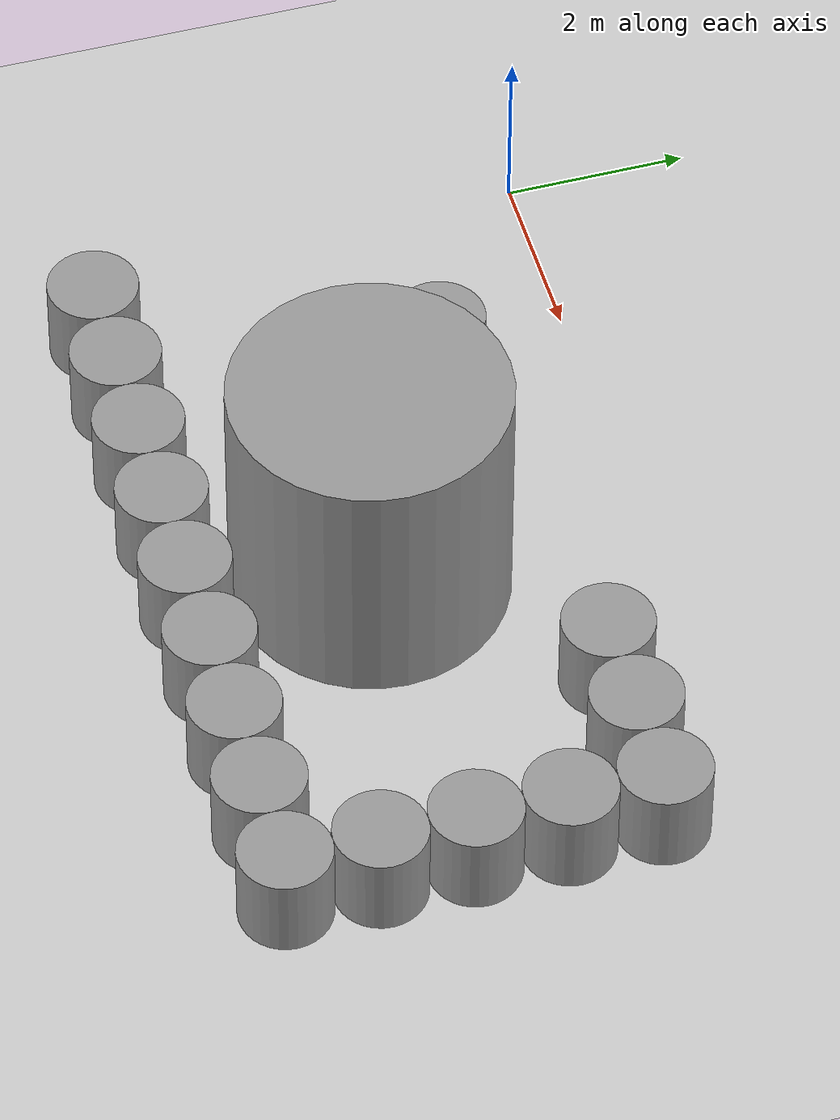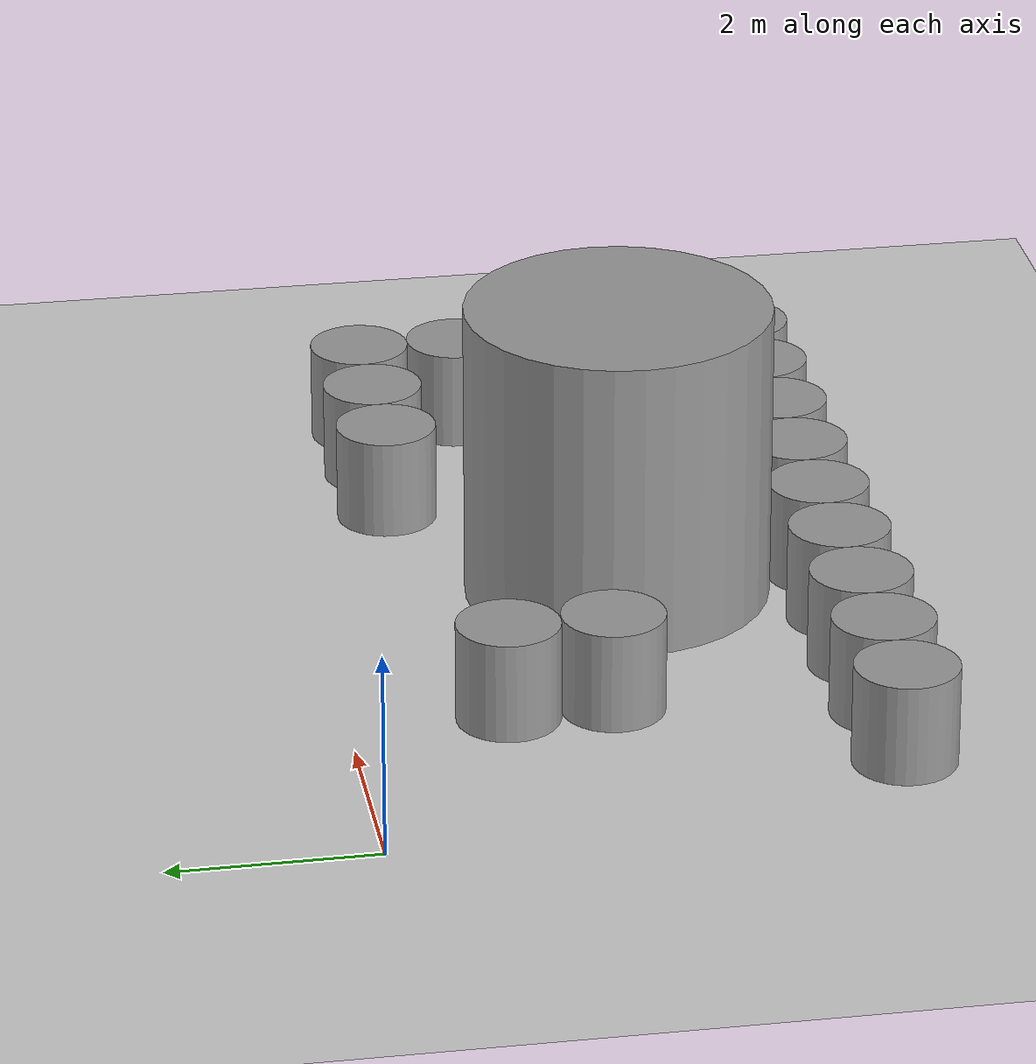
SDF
<sdf version="1.7">
 <world name="default">
  <model name="ground_plane">
   <static>1</static>
   <link name="link">
    <collision name="collision">
     <geometry><plane><normal>0 0 1</normal><size>100 100</size></plane></geometry>
     <surface>
      <contact><collide_bitmask>65535</collide_bitmask></contact>
      <friction><ode><mu>100</mu><mu2>50</mu2></ode></friction>
     </surface>
    </collision>
    <visual name="visual">
     <cast_shadows>0</cast_shadows>
     <geometry><plane><normal>0 0 1</normal><size>100 100</size></plane></geometry>
     <material>
      <script><uri>file://media/materials/scripts/gazebo.material</uri><name>Gazebo/Grey</name></script>
     </material>
    </visual>
   </link>
  </model>
  <model name="cylinder_1m_2_clone_14">
   <model name="cylinder_1m">
    <link name="link_0">
     <inertial>
      <mass>1</mass>
      <inertia>
       <ixx>0.166667</ixx>
       <ixy>0</ixy>
       <ixz>0</ixz>
       <iyy>0.166667</iyy>
       <iyz>0</iyz>
       <izz>0.166667</izz>
      </inertia>
     </inertial>
     <pose>0 0 -0 1.5708 -0 0</pose>
     <visual name="visual">
      <geometry>
       <mesh>
        <uri>/home/leesirius/workbench_ws/src/tb3_custom_worlds/custom_models/cylinder_1m.obj</uri>
        <scale>1 1 1</scale>
       </mesh>
      </geometry>
      <material>
       <lighting>1</lighting>
       <script><uri>file://media/materials/scripts/gazebo.material</uri><name>Gazebo/Grey</name></script>
       <shader type="pixel"/>
      </material>
     </visual>
     <collision name="collision">
      <geometry>
       <mesh>
        <uri>/home/leesirius/workbench_ws/src/tb3_custom_worlds/custom_models/cylinder_1m.obj</uri>
        <scale>1 1 1</scale>
       </mesh>
      </geometry>
      <surface>
       <friction>
        <ode><mu>1</mu><mu2>1</mu2><fdir1>0 0 0</fdir1><slip1>0</slip1><slip2>0</slip2></ode>
        <torsional>
         <coefficient>1</coefficient>
         <patch_radius>0</patch_radius>
         <surface_radius>0</surface_radius>
         <use_patch_radius>1</use_patch_radius>
         <ode><slip>0</slip></ode>
        </torsional>
       </friction>
       <bounce><restitution_coefficient>0</restitution_coefficient><threshold>1e+06</threshold></bounce>
       <contact>
        <collide_without_contact>0</collide_without_contact>
        <collide_without_contact_bitmask>1</collide_without_contact_bitmask>
        <collide_bitmask>1</collide_bitmask>
        <ode>
         <soft_cfm>0</soft_cfm>
         <soft_erp>0.2</soft_erp>
         <kp>1e+13</kp>
         <kd>1</kd>
         <max_vel>0.01</max_vel>
         <min_depth>0</min_depth>
        </ode>
        <bullet>
         <split_impulse>1</split_impulse>
         <split_impulse_penetration_threshold>-0.01</split_impulse_penetration_threshold>
         <soft_cfm>0</soft_cfm>
         <soft_erp>0.2</soft_erp>
         <kp>1e+13</kp>
         <kd>1</kd>
        </bullet>
       </contact>
      </surface>
     </collision>
    </link>
    <static>0</static>
    <pose>0 0 4e-06 0 -0 0</pose>
   </model>
   <static>1</static>
   <pose>1.00004 -5.00001 0.499995 -4e-06 -3e-06 0.00017</pose>
  </model>
  <model name="cylinder_1m_2_clone_15">
   <model name="cylinder_1m">
    <link name="link_0">
     <inertial>
      <mass>1</mass>
      <inertia>
       <ixx>0.166667</ixx>
       <ixy>0</ixy>
       <ixz>0</ixz>
       <iyy>0.166667</iyy>
       <iyz>0</iyz>
       <izz>0.166667</izz>
      </inertia>
     </inertial>
     <pose>0 0 -0 1.5708 -0 0</pose>
     <visual name="visual">
      <geometry>
       <mesh>
        <uri>/home/leesirius/workbench_ws/src/tb3_custom_worlds/custom_models/cylinder_1m.obj</uri>
        <scale>1 1 1</scale>
       </mesh>
      </geometry>
      <material>
       <lighting>1</lighting>
       <script><uri>file://media/materials/scripts/gazebo.material</uri><name>Gazebo/Grey</name></script>
       <shader type="pixel"/>
      </material>
     </visual>
     <collision name="collision">
      <geometry>
       <mesh>
        <uri>/home/leesirius/workbench_ws/src/tb3_custom_worlds/custom_models/cylinder_1m.obj</uri>
        <scale>1 1 1</scale>
       </mesh>
      </geometry>
      <surface>
       <friction>
        <ode><mu>1</mu><mu2>1</mu2><fdir1>0 0 0</fdir1><slip1>0</slip1><slip2>0</slip2></ode>
        <torsional>
         <coefficient>1</coefficient>
         <patch_radius>0</patch_radius>
         <surface_radius>0</surface_radius>
         <use_patch_radius>1</use_patch_radius>
         <ode><slip>0</slip></ode>
        </torsional>
       </friction>
       <bounce><restitution_coefficient>0</restitution_coefficient><threshold>1e+06</threshold></bounce>
       <contact>
        <collide_without_contact>0</collide_without_contact>
        <collide_without_contact_bitmask>1</collide_without_contact_bitmask>
        <collide_bitmask>1</collide_bitmask>
        <ode>
         <soft_cfm>0</soft_cfm>
         <soft_erp>0.2</soft_erp>
         <kp>1e+13</kp>
         <kd>1</kd>
         <max_vel>0.01</max_vel>
         <min_depth>0</min_depth>
        </ode>
        <bullet>
         <split_impulse>1</split_impulse>
         <split_impulse_penetration_threshold>-0.01</split_impulse_penetration_threshold>
         <soft_cfm>0</soft_cfm>
         <soft_erp>0.2</soft_erp>
         <kp>1e+13</kp>
         <kd>1</kd>
        </bullet>
       </contact>
      </surface>
     </collision>
    </link>
    <static>0</static>
    <pose>0 0 4e-06 0 -0 0</pose>
   </model>
   <static>1</static>
   <pose>2.00004 -5.00001 0.499995 -4e-06 -3e-06 0.00017</pose>
  </model>
  <model name="cylinder_1m_2_clone_16">
   <model name="cylinder_1m">
    <link name="link_0">
     <inertial>
      <mass>1</mass>
      <inertia>
       <ixx>0.166667</ixx>
       <ixy>0</ixy>
       <ixz>0</ixz>
       <iyy>0.166667</iyy>
       <iyz>0</iyz>
       <izz>0.166667</izz>
      </inertia>
     </inertial>
     <pose>0 0 -0 1.5708 -0 0</pose>
     <visual name="visual">
      <geometry>
       <mesh>
        <uri>/home/leesirius/workbench_ws/src/tb3_custom_worlds/custom_models/cylinder_1m.obj</uri>
        <scale>1 1 1</scale>
       </mesh>
      </geometry>
      <material>
       <lighting>1</lighting>
       <script><uri>file://media/materials/scripts/gazebo.material</uri><name>Gazebo/Grey</name></script>
       <shader type="pixel"/>
      </material>
     </visual>
     <collision name="collision">
      <geometry>
       <mesh>
        <uri>/home/leesirius/workbench_ws/src/tb3_custom_worlds/custom_models/cylinder_1m.obj</uri>
        <scale>1 1 1</scale>
       </mesh>
      </geometry>
      <surface>
       <friction>
        <ode><mu>1</mu><mu2>1</mu2><fdir1>0 0 0</fdir1><slip1>0</slip1><slip2>0</slip2></ode>
        <torsional>
         <coefficient>1</coefficient>
         <patch_radius>0</patch_radius>
         <surface_radius>0</surface_radius>
         <use_patch_radius>1</use_patch_radius>
         <ode><slip>0</slip></ode>
        </torsional>
       </friction>
       <bounce><restitution_coefficient>0</restitution_coefficient><threshold>1e+06</threshold></bounce>
       <contact>
        <collide_without_contact>0</collide_without_contact>
        <collide_without_contact_bitmask>1</collide_without_contact_bitmask>
        <collide_bitmask>1</collide_bitmask>
        <ode>
         <soft_cfm>0</soft_cfm>
         <soft_erp>0.2</soft_erp>
         <kp>1e+13</kp>
         <kd>1</kd>
         <max_vel>0.01</max_vel>
         <min_depth>0</min_depth>
        </ode>
        <bullet>
         <split_impulse>1</split_impulse>
         <split_impulse_penetration_threshold>-0.01</split_impulse_penetration_threshold>
         <soft_cfm>0</soft_cfm>
         <soft_erp>0.2</soft_erp>
         <kp>1e+13</kp>
         <kd>1</kd>
        </bullet>
       </contact>
      </surface>
     </collision>
    </link>
    <static>0</static>
    <pose>0 0 4e-06 0 -0 0</pose>
   </model>
   <static>1</static>
   <pose>2.99981 -5.00057 0.499997 -3e-06 2e-06 -0.000164</pose>
  </model>
  <model name="cylinder_1m_2_clone_17">
   <model name="cylinder_1m">
    <link name="link_0">
     <inertial>
      <mass>1</mass>
      <inertia>
       <ixx>0.166667</ixx>
       <ixy>0</ixy>
       <ixz>0</ixz>
       <iyy>0.166667</iyy>
       <iyz>0</iyz>
       <izz>0.166667</izz>
      </inertia>
     </inertial>
     <pose>0 0 -0 1.5708 -0 0</pose>
     <visual name="visual">
      <geometry>
       <mesh>
        <uri>/home/leesirius/workbench_ws/src/tb3_custom_worlds/custom_models/cylinder_1m.obj</uri>
        <scale>1 1 1</scale>
       </mesh>
      </geometry>
      <material>
       <lighting>1</lighting>
       <script><uri>file://media/materials/scripts/gazebo.material</uri><name>Gazebo/Grey</name></script>
       <shader type="pixel"/>
      </material>
     </visual>
     <collision name="collision">
      <geometry>
       <mesh>
        <uri>/home/leesirius/workbench_ws/src/tb3_custom_worlds/custom_models/cylinder_1m.obj</uri>
        <scale>1 1 1</scale>
       </mesh>
      </geometry>
      <surface>
       <friction>
        <ode><mu>1</mu><mu2>1</mu2><fdir1>0 0 0</fdir1><slip1>0</slip1><slip2>0</slip2></ode>
        <torsional>
         <coefficient>1</coefficient>
         <patch_radius>0</patch_radius>
         <surface_radius>0</surface_radius>
         <use_patch_radius>1</use_patch_radius>
         <ode><slip>0</slip></ode>
        </torsional>
       </friction>
       <bounce><restitution_coefficient>0</restitution_coefficient><threshold>1e+06</threshold></bounce>
       <contact>
        <collide_without_contact>0</collide_without_contact>
        <collide_without_contact_bitmask>1</collide_without_contact_bitmask>
        <collide_bitmask>1</collide_bitmask>
        <ode>
         <soft_cfm>0</soft_cfm>
         <soft_erp>0.2</soft_erp>
         <kp>1e+13</kp>
         <kd>1</kd>
         <max_vel>0.01</max_vel>
         <min_depth>0</min_depth>
        </ode>
        <bullet>
         <split_impulse>1</split_impulse>
         <split_impulse_penetration_threshold>-0.01</split_impulse_penetration_threshold>
         <soft_cfm>0</soft_cfm>
         <soft_erp>0.2</soft_erp>
         <kp>1e+13</kp>
         <kd>1</kd>
        </bullet>
       </contact>
      </surface>
     </collision>
    </link>
    <static>0</static>
    <pose>0 0 4e-06 0 -0 0</pose>
   </model>
   <static>1</static>
   <pose>3.99994 -5.00301 0.499974 1.9e-05 -3e-06 0.000667</pose>
  </model>
  <model name="cylinder_1m_2_clone_18">
   <model name="cylinder_1m">
    <link name="link_0">
     <inertial>
      <mass>1</mass>
      <inertia>
       <ixx>0.166667</ixx>
       <ixy>0</ixy>
       <ixz>0</ixz>
       <iyy>0.166667</iyy>
       <iyz>0</iyz>
       <izz>0.166667</izz>
      </inertia>
     </inertial>
     <pose>0 0 -0 1.5708 -0 0</pose>
     <visual name="visual">
      <geometry>
       <mesh>
        <uri>/home/leesirius/workbench_ws/src/tb3_custom_worlds/custom_models/cylinder_1m.obj</uri>
        <scale>1 1 1</scale>
       </mesh>
      </geometry>
      <material>
       <lighting>1</lighting>
       <script><uri>file://media/materials/scripts/gazebo.material</uri><name>Gazebo/Grey</name></script>
       <shader type="pixel"/>
      </material>
     </visual>
     <collision name="collision">
      <geometry>
       <mesh>
        <uri>/home/leesirius/workbench_ws/src/tb3_custom_worlds/custom_models/cylinder_1m.obj</uri>
        <scale>1 1 1</scale>
       </mesh>
      </geometry>
      <surface>
       <friction>
        <ode><mu>1</mu><mu2>1</mu2><fdir1>0 0 0</fdir1><slip1>0</slip1><slip2>0</slip2></ode>
        <torsional>
         <coefficient>1</coefficient>
         <patch_radius>0</patch_radius>
         <surface_radius>0</surface_radius>
         <use_patch_radius>1</use_patch_radius>
         <ode><slip>0</slip></ode>
        </torsional>
       </friction>
       <bounce><restitution_coefficient>0</restitution_coefficient><threshold>1e+06</threshold></bounce>
       <contact>
        <collide_without_contact>0</collide_without_contact>
        <collide_without_contact_bitmask>1</collide_without_contact_bitmask>
        <collide_bitmask>1</collide_bitmask>
        <ode>
         <soft_cfm>0</soft_cfm>
         <soft_erp>0.2</soft_erp>
         <kp>1e+13</kp>
         <kd>1</kd>
         <max_vel>0.01</max_vel>
         <min_depth>0</min_depth>
        </ode>
        <bullet>
         <split_impulse>1</split_impulse>
         <split_impulse_penetration_threshold>-0.01</split_impulse_penetration_threshold>
         <soft_cfm>0</soft_cfm>
         <soft_erp>0.2</soft_erp>
         <kp>1e+13</kp>
         <kd>1</kd>
        </bullet>
       </contact>
      </surface>
     </collision>
    </link>
    <static>0</static>
    <pose>0 0 4e-06 0 -0 0</pose>
   </model>
   <static>1</static>
   <pose>4.99273 -5.00326 0.499996 -3e-06 -0 0.023332</pose>
  </model>
  <model name="cylinder_1m_2_clone_42">
   <model name="cylinder_1m">
    <link name="link_0">
     <inertial>
      <mass>1</mass>
      <inertia>
       <ixx>0.166667</ixx>
       <ixy>0</ixy>
       <ixz>0</ixz>
       <iyy>0.166667</iyy>
       <iyz>0</iyz>
       <izz>0.166667</izz>
      </inertia>
     </inertial>
     <pose>0 0 -0 1.5708 -0 0</pose>
     <visual name="visual">
      <geometry>
       <mesh>
        <uri>/home/leesirius/workbench_ws/src/tb3_custom_worlds/custom_models/cylinder_1m.obj</uri>
        <scale>1 1 1</scale>
       </mesh>
      </geometry>
      <material>
       <lighting>1</lighting>
       <script><uri>file://media/materials/scripts/gazebo.material</uri><name>Gazebo/Grey</name></script>
       <shader type="pixel"/>
      </material>
     </visual>
     <collision name="collision">
      <geometry>
       <mesh>
        <uri>/home/leesirius/workbench_ws/src/tb3_custom_worlds/custom_models/cylinder_1m.obj</uri>
        <scale>1 1 1</scale>
       </mesh>
      </geometry>
      <surface>
       <friction>
        <ode><mu>1</mu><mu2>1</mu2><fdir1>0 0 0</fdir1><slip1>0</slip1><slip2>0</slip2></ode>
        <torsional>
         <coefficient>1</coefficient>
         <patch_radius>0</patch_radius>
         <surface_radius>0</surface_radius>
         <use_patch_radius>1</use_patch_radius>
         <ode><slip>0</slip></ode>
        </torsional>
       </friction>
       <bounce><restitution_coefficient>0</restitution_coefficient><threshold>1e+06</threshold></bounce>
       <contact>
        <collide_without_contact>0</collide_without_contact>
        <collide_without_contact_bitmask>1</collide_without_contact_bitmask>
        <collide_bitmask>1</collide_bitmask>
        <ode>
         <soft_cfm>0</soft_cfm>
         <soft_erp>0.2</soft_erp>
         <kp>1e+13</kp>
         <kd>1</kd>
         <max_vel>0.01</max_vel>
         <min_depth>0</min_depth>
        </ode>
        <bullet>
         <split_impulse>1</split_impulse>
         <split_impulse_penetration_threshold>-0.01</split_impulse_penetration_threshold>
         <soft_cfm>0</soft_cfm>
         <soft_erp>0.2</soft_erp>
         <kp>1e+13</kp>
         <kd>1</kd>
        </bullet>
       </contact>
      </surface>
     </collision>
    </link>
    <static>0</static>
    <pose>0 0 4e-06 0 -0 0</pose>
   </model>
   <static>1</static>
   <pose>8.00003 -5.00002 0.499993 -1e-05 3e-06 0.00017</pose>
  </model>
  <model name="cylinder_1m_2_clone_43">
   <model name="cylinder_1m">
    <link name="link_0">
     <inertial>
      <mass>1</mass>
      <inertia>
       <ixx>0.166667</ixx>
       <ixy>0</ixy>
       <ixz>0</ixz>
       <iyy>0.166667</iyy>
       <iyz>0</iyz>
       <izz>0.166667</izz>
      </inertia>
     </inertial>
     <pose>0 0 -0 1.5708 -0 0</pose>
     <visual name="visual">
      <geometry>
       <mesh>
        <uri>/home/leesirius/workbench_ws/src/tb3_custom_worlds/custom_models/cylinder_1m.obj</uri>
        <scale>1 1 1</scale>
       </mesh>
      </geometry>
      <material>
       <lighting>1</lighting>
       <script><uri>file://media/materials/scripts/gazebo.material</uri><name>Gazebo/Grey</name></script>
       <shader type="pixel"/>
      </material>
     </visual>
     <collision name="collision">
      <geometry>
       <mesh>
        <uri>/home/leesirius/workbench_ws/src/tb3_custom_worlds/custom_models/cylinder_1m.obj</uri>
        <scale>1 1 1</scale>
       </mesh>
      </geometry>
      <surface>
       <friction>
        <ode><mu>1</mu><mu2>1</mu2><fdir1>0 0 0</fdir1><slip1>0</slip1><slip2>0</slip2></ode>
        <torsional>
         <coefficient>1</coefficient>
         <patch_radius>0</patch_radius>
         <surface_radius>0</surface_radius>
         <use_patch_radius>1</use_patch_radius>
         <ode><slip>0</slip></ode>
        </torsional>
       </friction>
       <bounce><restitution_coefficient>0</restitution_coefficient><threshold>1e+06</threshold></bounce>
       <contact>
        <collide_without_contact>0</collide_without_contact>
        <collide_without_contact_bitmask>1</collide_without_contact_bitmask>
        <collide_bitmask>1</collide_bitmask>
        <ode>
         <soft_cfm>0</soft_cfm>
         <soft_erp>0.2</soft_erp>
         <kp>1e+13</kp>
         <kd>1</kd>
         <max_vel>0.01</max_vel>
         <min_depth>0</min_depth>
        </ode>
        <bullet>
         <split_impulse>1</split_impulse>
         <split_impulse_penetration_threshold>-0.01</split_impulse_penetration_threshold>
         <soft_cfm>0</soft_cfm>
         <soft_erp>0.2</soft_erp>
         <kp>1e+13</kp>
         <kd>1</kd>
        </bullet>
       </contact>
      </surface>
     </collision>
    </link>
    <static>0</static>
    <pose>0 0 4e-06 0 -0 0</pose>
   </model>
   <static>1</static>
   <pose>7.00003 -5.00002 0.499993 -1e-05 3e-06 0.00017</pose>
  </model>
  <model name="cylinder_1m_2_clone_44">
   <model name="cylinder_1m">
    <link name="link_0">
     <inertial>
      <mass>1</mass>
      <inertia>
       <ixx>0.166667</ixx>
       <ixy>0</ixy>
       <ixz>0</ixz>
       <iyy>0.166667</iyy>
       <iyz>0</iyz>
       <izz>0.166667</izz>
      </inertia>
     </inertial>
     <pose>0 0 -0 1.5708 -0 0</pose>
     <visual name="visual">
      <geometry>
       <mesh>
        <uri>/home/leesirius/workbench_ws/src/tb3_custom_worlds/custom_models/cylinder_1m.obj</uri>
        <scale>1 1 1</scale>
       </mesh>
      </geometry>
      <material>
       <lighting>1</lighting>
       <script><uri>file://media/materials/scripts/gazebo.material</uri><name>Gazebo/Grey</name></script>
       <shader type="pixel"/>
      </material>
     </visual>
     <collision name="collision">
      <geometry>
       <mesh>
        <uri>/home/leesirius/workbench_ws/src/tb3_custom_worlds/custom_models/cylinder_1m.obj</uri>
        <scale>1 1 1</scale>
       </mesh>
      </geometry>
      <surface>
       <friction>
        <ode><mu>1</mu><mu2>1</mu2><fdir1>0 0 0</fdir1><slip1>0</slip1><slip2>0</slip2></ode>
        <torsional>
         <coefficient>1</coefficient>
         <patch_radius>0</patch_radius>
         <surface_radius>0</surface_radius>
         <use_patch_radius>1</use_patch_radius>
         <ode><slip>0</slip></ode>
        </torsional>
       </friction>
       <bounce><restitution_coefficient>0</restitution_coefficient><threshold>1e+06</threshold></bounce>
       <contact>
        <collide_without_contact>0</collide_without_contact>
        <collide_without_contact_bitmask>1</collide_without_contact_bitmask>
        <collide_bitmask>1</collide_bitmask>
        <ode>
         <soft_cfm>0</soft_cfm>
         <soft_erp>0.2</soft_erp>
         <kp>1e+13</kp>
         <kd>1</kd>
         <max_vel>0.01</max_vel>
         <min_depth>0</min_depth>
        </ode>
        <bullet>
         <split_impulse>1</split_impulse>
         <split_impulse_penetration_threshold>-0.01</split_impulse_penetration_threshold>
         <soft_cfm>0</soft_cfm>
         <soft_erp>0.2</soft_erp>
         <kp>1e+13</kp>
         <kd>1</kd>
        </bullet>
       </contact>
      </surface>
     </collision>
    </link>
    <static>0</static>
    <pose>0 0 4e-06 0 -0 0</pose>
   </model>
   <static>1</static>
   <pose>6.00003 -5.00002 0.499993 -1e-05 3e-06 0.00017</pose>
  </model>
  <model name="cylinder_3m_0">
   <model name="cylinder_3m">
    <link name="link_2">
     <inertial>
      <mass>1</mass>
      <inertia>
       <ixx>0.166667</ixx>
       <ixy>0</ixy>
       <ixz>0</ixz>
       <iyy>0.166667</iyy>
       <iyz>0</iyz>
       <izz>0.166667</izz>
      </inertia>
     </inertial>
     <pose>0 0 -4e-06 1.5708 -0 3.14159</pose>
     <visual name="visual">
      <geometry>
       <mesh>
        <uri>/home/leesirius/workbench_ws/src/tb3_custom_worlds/custom_models/cylinder_3m.obj</uri>
        <scale>1 1 1</scale>
       </mesh>
      </geometry>
      <material>
       <lighting>1</lighting>
       <script><uri>file://media/materials/scripts/gazebo.material</uri><name>Gazebo/Grey</name></script>
       <shader type="pixel"/>
      </material>
     </visual>
     <collision name="collision">
      <geometry>
       <mesh>
        <uri>/home/leesirius/workbench_ws/src/tb3_custom_worlds/custom_models/cylinder_3m.obj</uri>
        <scale>1 1 1</scale>
       </mesh>
      </geometry>
      <surface>
       <friction>
        <ode><mu>1</mu><mu2>1</mu2><fdir1>0 0 0</fdir1><slip1>0</slip1><slip2>0</slip2></ode>
        <torsional>
         <coefficient>1</coefficient>
         <patch_radius>0</patch_radius>
         <surface_radius>0</surface_radius>
         <use_patch_radius>1</use_patch_radius>
         <ode><slip>0</slip></ode>
        </torsional>
       </friction>
       <bounce><restitution_coefficient>0</restitution_coefficient><threshold>1e+06</threshold></bounce>
       <contact>
        <collide_without_contact>0</collide_without_contact>
        <collide_without_contact_bitmask>1</collide_without_contact_bitmask>
        <collide_bitmask>1</collide_bitmask>
        <ode>
         <soft_cfm>0</soft_cfm>
         <soft_erp>0.2</soft_erp>
         <kp>1e+13</kp>
         <kd>1</kd>
         <max_vel>0.01</max_vel>
         <min_depth>0</min_depth>
        </ode>
        <bullet>
         <split_impulse>1</split_impulse>
         <split_impulse_penetration_threshold>-0.01</split_impulse_penetration_threshold>
         <soft_cfm>0</soft_cfm>
         <soft_erp>0.2</soft_erp>
         <kp>1e+13</kp>
         <kd>1</kd>
        </bullet>
       </contact>
      </surface>
     </collision>
    </link>
    <static>0</static>
    <pose>0 0 0.181896 0 -0 0</pose>
   </model>
   <static>1</static>
   <pose>5 -3.00003 1.31811 6e-06 -0 0.000143</pose>
  </model>
  <model name="cylinder_1m_2_clone_46_clone_10">
   <model name="cylinder_1m">
    <link name="link_0">
     <inertial>
      <mass>1</mass>
      <inertia>
       <ixx>0.166667</ixx>
       <ixy>0</ixy>
       <ixz>0</ixz>
       <iyy>0.166667</iyy>
       <iyz>0</iyz>
       <izz>0.166667</izz>
      </inertia>
     </inertial>
     <pose>0 0 -0 1.5708 -0 0</pose>
     <visual name="visual">
      <geometry>
       <mesh>
        <uri>/home/leesirius/workbench_ws/src/tb3_custom_worlds/custom_models/cylinder_1m.obj</uri>
        <scale>1 1 1</scale>
       </mesh>
      </geometry>
      <material>
       <lighting>1</lighting>
       <script><uri>file://media/materials/scripts/gazebo.material</uri><name>Gazebo/Grey</name></script>
       <shader type="pixel"/>
      </material>
     </visual>
     <collision name="collision">
      <geometry>
       <mesh>
        <uri>/home/leesirius/workbench_ws/src/tb3_custom_worlds/custom_models/cylinder_1m.obj</uri>
        <scale>1 1 1</scale>
       </mesh>
      </geometry>
      <surface>
       <friction>
        <ode><mu>1</mu><mu2>1</mu2><fdir1>0 0 0</fdir1><slip1>0</slip1><slip2>0</slip2></ode>
        <torsional>
         <coefficient>1</coefficient>
         <patch_radius>0</patch_radius>
         <surface_radius>0</surface_radius>
         <use_patch_radius>1</use_patch_radius>
         <ode><slip>0</slip></ode>
        </torsional>
       </friction>
       <bounce><restitution_coefficient>0</restitution_coefficient><threshold>1e+06</threshold></bounce>
       <contact>
        <collide_without_contact>0</collide_without_contact>
        <collide_without_contact_bitmask>1</collide_without_contact_bitmask>
        <collide_bitmask>1</collide_bitmask>
        <ode>
         <soft_cfm>0</soft_cfm>
         <soft_erp>0.2</soft_erp>
         <kp>1e+13</kp>
         <kd>1</kd>
         <max_vel>0.01</max_vel>
         <min_depth>0</min_depth>
        </ode>
        <bullet>
         <split_impulse>1</split_impulse>
         <split_impulse_penetration_threshold>-0.01</split_impulse_penetration_threshold>
         <soft_cfm>0</soft_cfm>
         <soft_erp>0.2</soft_erp>
         <kp>1e+13</kp>
         <kd>1</kd>
        </bullet>
       </contact>
      </surface>
     </collision>
    </link>
    <static>0</static>
    <pose>0 0 4e-06 0 -0 0</pose>
   </model>
   <static>1</static>
   <pose>7.00052 -1.00008 0.500017 -1.1e-05 4.5e-05 0.000276</pose>
  </model>
  <model name="cylinder_1m_2_clone_46_clone_11">
   <model name="cylinder_1m">
    <link name="link_0">
     <inertial>
      <mass>1</mass>
      <inertia>
       <ixx>0.166667</ixx>
       <ixy>0</ixy>
       <ixz>0</ixz>
       <iyy>0.166667</iyy>
       <iyz>0</iyz>
       <izz>0.166667</izz>
      </inertia>
     </inertial>
     <pose>0 0 -0 1.5708 -0 0</pose>
     <visual name="visual">
      <geometry>
       <mesh>
        <uri>/home/leesirius/workbench_ws/src/tb3_custom_worlds/custom_models/cylinder_1m.obj</uri>
        <scale>1 1 1</scale>
       </mesh>
      </geometry>
      <material>
       <lighting>1</lighting>
       <script><uri>file://media/materials/scripts/gazebo.material</uri><name>Gazebo/Grey</name></script>
       <shader type="pixel"/>
      </material>
     </visual>
     <collision name="collision">
      <geometry>
       <mesh>
        <uri>/home/leesirius/workbench_ws/src/tb3_custom_worlds/custom_models/cylinder_1m.obj</uri>
        <scale>1 1 1</scale>
       </mesh>
      </geometry>
      <surface>
       <friction>
        <ode><mu>1</mu><mu2>1</mu2><fdir1>0 0 0</fdir1><slip1>0</slip1><slip2>0</slip2></ode>
        <torsional>
         <coefficient>1</coefficient>
         <patch_radius>0</patch_radius>
         <surface_radius>0</surface_radius>
         <use_patch_radius>1</use_patch_radius>
         <ode><slip>0</slip></ode>
        </torsional>
       </friction>
       <bounce><restitution_coefficient>0</restitution_coefficient><threshold>1e+06</threshold></bounce>
       <contact>
        <collide_without_contact>0</collide_without_contact>
        <collide_without_contact_bitmask>1</collide_without_contact_bitmask>
        <collide_bitmask>1</collide_bitmask>
        <ode>
         <soft_cfm>0</soft_cfm>
         <soft_erp>0.2</soft_erp>
         <kp>1e+13</kp>
         <kd>1</kd>
         <max_vel>0.01</max_vel>
         <min_depth>0</min_depth>
        </ode>
        <bullet>
         <split_impulse>1</split_impulse>
         <split_impulse_penetration_threshold>-0.01</split_impulse_penetration_threshold>
         <soft_cfm>0</soft_cfm>
         <soft_erp>0.2</soft_erp>
         <kp>1e+13</kp>
         <kd>1</kd>
        </bullet>
       </contact>
      </surface>
     </collision>
    </link>
    <static>0</static>
    <pose>0 0 4e-06 0 -0 0</pose>
   </model>
   <static>1</static>
   <pose>8.00001 -1.00001 0.499993 -5e-06 -6e-06 0.0002</pose>
  </model>
  <model name="cylinder_1m_2_clone_46_clone_12">
   <model name="cylinder_1m">
    <link name="link_0">
     <inertial>
      <mass>1</mass>
      <inertia>
       <ixx>0.166667</ixx>
       <ixy>0</ixy>
       <ixz>0</ixz>
       <iyy>0.166667</iyy>
       <iyz>0</iyz>
       <izz>0.166667</izz>
      </inertia>
     </inertial>
     <pose>0 0 -0 1.5708 -0 0</pose>
     <visual name="visual">
      <geometry>
       <mesh>
        <uri>/home/leesirius/workbench_ws/src/tb3_custom_worlds/custom_models/cylinder_1m.obj</uri>
        <scale>1 1 1</scale>
       </mesh>
      </geometry>
      <material>
       <lighting>1</lighting>
       <script><uri>file://media/materials/scripts/gazebo.material</uri><name>Gazebo/Grey</name></script>
       <shader type="pixel"/>
      </material>
     </visual>
     <collision name="collision">
      <geometry>
       <mesh>
        <uri>/home/leesirius/workbench_ws/src/tb3_custom_worlds/custom_models/cylinder_1m.obj</uri>
        <scale>1 1 1</scale>
       </mesh>
      </geometry>
      <surface>
       <friction>
        <ode><mu>1</mu><mu2>1</mu2><fdir1>0 0 0</fdir1><slip1>0</slip1><slip2>0</slip2></ode>
        <torsional>
         <coefficient>1</coefficient>
         <patch_radius>0</patch_radius>
         <surface_radius>0</surface_radius>
         <use_patch_radius>1</use_patch_radius>
         <ode><slip>0</slip></ode>
        </torsional>
       </friction>
       <bounce><restitution_coefficient>0</restitution_coefficient><threshold>1e+06</threshold></bounce>
       <contact>
        <collide_without_contact>0</collide_without_contact>
        <collide_without_contact_bitmask>1</collide_without_contact_bitmask>
        <collide_bitmask>1</collide_bitmask>
        <ode>
         <soft_cfm>0</soft_cfm>
         <soft_erp>0.2</soft_erp>
         <kp>1e+13</kp>
         <kd>1</kd>
         <max_vel>0.01</max_vel>
         <min_depth>0</min_depth>
        </ode>
        <bullet>
         <split_impulse>1</split_impulse>
         <split_impulse_penetration_threshold>-0.01</split_impulse_penetration_threshold>
         <soft_cfm>0</soft_cfm>
         <soft_erp>0.2</soft_erp>
         <kp>1e+13</kp>
         <kd>1</kd>
        </bullet>
       </contact>
      </surface>
     </collision>
    </link>
    <static>0</static>
    <pose>0 0 4e-06 0 -0 0</pose>
   </model>
   <static>1</static>
   <pose>9.00001 -1.00001 0.499993 -5e-06 -6e-06 0.0002</pose>
  </model>
  <model name="cylinder_1m_2_clone_46_clone_13">
   <model name="cylinder_1m">
    <link name="link_0">
     <inertial>
      <mass>1</mass>
      <inertia>
       <ixx>0.166667</ixx>
       <ixy>0</ixy>
       <ixz>0</ixz>
       <iyy>0.166667</iyy>
       <iyz>0</iyz>
       <izz>0.166667</izz>
      </inertia>
     </inertial>
     <pose>0 0 -0 1.5708 -0 0</pose>
     <visual name="visual">
      <geometry>
       <mesh>
        <uri>/home/leesirius/workbench_ws/src/tb3_custom_worlds/custom_models/cylinder_1m.obj</uri>
        <scale>1 1 1</scale>
       </mesh>
      </geometry>
      <material>
       <lighting>1</lighting>
       <script><uri>file://media/materials/scripts/gazebo.material</uri><name>Gazebo/Grey</name></script>
       <shader type="pixel"/>
      </material>
     </visual>
     <collision name="collision">
      <geometry>
       <mesh>
        <uri>/home/leesirius/workbench_ws/src/tb3_custom_worlds/custom_models/cylinder_1m.obj</uri>
        <scale>1 1 1</scale>
       </mesh>
      </geometry>
      <surface>
       <friction>
        <ode><mu>1</mu><mu2>1</mu2><fdir1>0 0 0</fdir1><slip1>0</slip1><slip2>0</slip2></ode>
        <torsional>
         <coefficient>1</coefficient>
         <patch_radius>0</patch_radius>
         <surface_radius>0</surface_radius>
         <use_patch_radius>1</use_patch_radius>
         <ode><slip>0</slip></ode>
        </torsional>
       </friction>
       <bounce><restitution_coefficient>0</restitution_coefficient><threshold>1e+06</threshold></bounce>
       <contact>
        <collide_without_contact>0</collide_without_contact>
        <collide_without_contact_bitmask>1</collide_without_contact_bitmask>
        <collide_bitmask>1</collide_bitmask>
        <ode>
         <soft_cfm>0</soft_cfm>
         <soft_erp>0.2</soft_erp>
         <kp>1e+13</kp>
         <kd>1</kd>
         <max_vel>0.01</max_vel>
         <min_depth>0</min_depth>
        </ode>
        <bullet>
         <split_impulse>1</split_impulse>
         <split_impulse_penetration_threshold>-0.01</split_impulse_penetration_threshold>
         <soft_cfm>0</soft_cfm>
         <soft_erp>0.2</soft_erp>
         <kp>1e+13</kp>
         <kd>1</kd>
        </bullet>
       </contact>
      </surface>
     </collision>
    </link>
    <static>0</static>
    <pose>0 0 4e-06 0 -0 0</pose>
   </model>
   <static>1</static>
   <pose>9.00001 -2.00001 0.499993 -5e-06 -6e-06 0.0002</pose>
  </model>
  <model name="cylinder_1m_2_clone_46_clone_14">
   <model name="cylinder_1m">
    <link name="link_0">
     <inertial>
      <mass>1</mass>
      <inertia>
       <ixx>0.166667</ixx>
       <ixy>0</ixy>
       <ixz>0</ixz>
       <iyy>0.166667</iyy>
       <iyz>0</iyz>
       <izz>0.166667</izz>
      </inertia>
     </inertial>
     <pose>0 0 -0 1.5708 -0 0</pose>
     <visual name="visual">
      <geometry>
       <mesh>
        <uri>/home/leesirius/workbench_ws/src/tb3_custom_worlds/custom_models/cylinder_1m.obj</uri>
        <scale>1 1 1</scale>
       </mesh>
      </geometry>
      <material>
       <lighting>1</lighting>
       <script><uri>file://media/materials/scripts/gazebo.material</uri><name>Gazebo/Grey</name></script>
       <shader type="pixel"/>
      </material>
     </visual>
     <collision name="collision">
      <geometry>
       <mesh>
        <uri>/home/leesirius/workbench_ws/src/tb3_custom_worlds/custom_models/cylinder_1m.obj</uri>
        <scale>1 1 1</scale>
       </mesh>
      </geometry>
      <surface>
       <friction>
        <ode><mu>1</mu><mu2>1</mu2><fdir1>0 0 0</fdir1><slip1>0</slip1><slip2>0</slip2></ode>
        <torsional>
         <coefficient>1</coefficient>
         <patch_radius>0</patch_radius>
         <surface_radius>0</surface_radius>
         <use_patch_radius>1</use_patch_radius>
         <ode><slip>0</slip></ode>
        </torsional>
       </friction>
       <bounce><restitution_coefficient>0</restitution_coefficient><threshold>1e+06</threshold></bounce>
       <contact>
        <collide_without_contact>0</collide_without_contact>
        <collide_without_contact_bitmask>1</collide_without_contact_bitmask>
        <collide_bitmask>1</collide_bitmask>
        <ode>
         <soft_cfm>0</soft_cfm>
         <soft_erp>0.2</soft_erp>
         <kp>1e+13</kp>
         <kd>1</kd>
         <max_vel>0.01</max_vel>
         <min_depth>0</min_depth>
        </ode>
        <bullet>
         <split_impulse>1</split_impulse>
         <split_impulse_penetration_threshold>-0.01</split_impulse_penetration_threshold>
         <soft_cfm>0</soft_cfm>
         <soft_erp>0.2</soft_erp>
         <kp>1e+13</kp>
         <kd>1</kd>
        </bullet>
       </contact>
      </surface>
     </collision>
    </link>
    <static>0</static>
    <pose>0 0 4e-06 0 -0 0</pose>
   </model>
   <static>1</static>
   <pose>9.00001 -3.00001 0.499993 -5e-06 -6e-06 0.0002</pose>
  </model>
  <model name="cylinder_1m_2_clone_46_clone_15">
   <model name="cylinder_1m">
    <link name="link_0">
     <inertial>
      <mass>1</mass>
      <inertia>
       <ixx>0.166667</ixx>
       <ixy>0</ixy>
       <ixz>0</ixz>
       <iyy>0.166667</iyy>
       <iyz>0</iyz>
       <izz>0.166667</izz>
      </inertia>
     </inertial>
     <pose>0 0 -0 1.5708 -0 0</pose>
     <visual name="visual">
      <geometry>
       <mesh>
        <uri>/home/leesirius/workbench_ws/src/tb3_custom_worlds/custom_models/cylinder_1m.obj</uri>
        <scale>1 1 1</scale>
       </mesh>
      </geometry>
      <material>
       <lighting>1</lighting>
       <script><uri>file://media/materials/scripts/gazebo.material</uri><name>Gazebo/Grey</name></script>
       <shader type="pixel"/>
      </material>
     </visual>
     <collision name="collision">
      <geometry>
       <mesh>
        <uri>/home/leesirius/workbench_ws/src/tb3_custom_worlds/custom_models/cylinder_1m.obj</uri>
        <scale>1 1 1</scale>
       </mesh>
      </geometry>
      <surface>
       <friction>
        <ode><mu>1</mu><mu2>1</mu2><fdir1>0 0 0</fdir1><slip1>0</slip1><slip2>0</slip2></ode>
        <torsional>
         <coefficient>1</coefficient>
         <patch_radius>0</patch_radius>
         <surface_radius>0</surface_radius>
         <use_patch_radius>1</use_patch_radius>
         <ode><slip>0</slip></ode>
        </torsional>
       </friction>
       <bounce><restitution_coefficient>0</restitution_coefficient><threshold>1e+06</threshold></bounce>
       <contact>
        <collide_without_contact>0</collide_without_contact>
        <collide_without_contact_bitmask>1</collide_without_contact_bitmask>
        <collide_bitmask>1</collide_bitmask>
        <ode>
         <soft_cfm>0</soft_cfm>
         <soft_erp>0.2</soft_erp>
         <kp>1e+13</kp>
         <kd>1</kd>
         <max_vel>0.01</max_vel>
         <min_depth>0</min_depth>
        </ode>
        <bullet>
         <split_impulse>1</split_impulse>
         <split_impulse_penetration_threshold>-0.01</split_impulse_penetration_threshold>
         <soft_cfm>0</soft_cfm>
         <soft_erp>0.2</soft_erp>
         <kp>1e+13</kp>
         <kd>1</kd>
        </bullet>
       </contact>
      </surface>
     </collision>
    </link>
    <static>0</static>
    <pose>0 0 4e-06 0 -0 0</pose>
   </model>
   <static>1</static>
   <pose>9.00001 -4.00001 0.499993 -5e-06 -6e-06 0.0002</pose>
  </model>
  <model name="cylinder_1m_2_clone_46_clone_16">
   <model name="cylinder_1m">
    <link name="link_0">
     <inertial>
      <mass>1</mass>
      <inertia>
       <ixx>0.166667</ixx>
       <ixy>0</ixy>
       <ixz>0</ixz>
       <iyy>0.166667</iyy>
       <iyz>0</iyz>
       <izz>0.166667</izz>
      </inertia>
     </inertial>
     <pose>0 0 -0 1.5708 -0 0</pose>
     <visual name="visual">
      <geometry>
       <mesh>
        <uri>/home/leesirius/workbench_ws/src/tb3_custom_worlds/custom_models/cylinder_1m.obj</uri>
        <scale>1 1 1</scale>
       </mesh>
      </geometry>
      <material>
       <lighting>1</lighting>
       <script><uri>file://media/materials/scripts/gazebo.material</uri><name>Gazebo/Grey</name></script>
       <shader type="pixel"/>
      </material>
     </visual>
     <collision name="collision">
      <geometry>
       <mesh>
        <uri>/home/leesirius/workbench_ws/src/tb3_custom_worlds/custom_models/cylinder_1m.obj</uri>
        <scale>1 1 1</scale>
       </mesh>
      </geometry>
      <surface>
       <friction>
        <ode><mu>1</mu><mu2>1</mu2><fdir1>0 0 0</fdir1><slip1>0</slip1><slip2>0</slip2></ode>
        <torsional>
         <coefficient>1</coefficient>
         <patch_radius>0</patch_radius>
         <surface_radius>0</surface_radius>
         <use_patch_radius>1</use_patch_radius>
         <ode><slip>0</slip></ode>
        </torsional>
       </friction>
       <bounce><restitution_coefficient>0</restitution_coefficient><threshold>1e+06</threshold></bounce>
       <contact>
        <collide_without_contact>0</collide_without_contact>
        <collide_without_contact_bitmask>1</collide_without_contact_bitmask>
        <collide_bitmask>1</collide_bitmask>
        <ode>
         <soft_cfm>0</soft_cfm>
         <soft_erp>0.2</soft_erp>
         <kp>1e+13</kp>
         <kd>1</kd>
         <max_vel>0.01</max_vel>
         <min_depth>0</min_depth>
        </ode>
        <bullet>
         <split_impulse>1</split_impulse>
         <split_impulse_penetration_threshold>-0.01</split_impulse_penetration_threshold>
         <soft_cfm>0</soft_cfm>
         <soft_erp>0.2</soft_erp>
         <kp>1e+13</kp>
         <kd>1</kd>
        </bullet>
       </contact>
      </surface>
     </collision>
    </link>
    <static>0</static>
    <pose>0 0 4e-06 0 -0 0</pose>
   </model>
   <static>1</static>
   <pose>9.00001 -5.00001 0.499993 -5e-06 -6e-06 0.0002</pose>
  </model>
  <model name="cylinder_1m_2_clone_46_clone_18">
   <model name="cylinder_1m">
    <link name="link_0">
     <inertial>
      <mass>1</mass>
      <inertia>
       <ixx>0.166667</ixx>
       <ixy>0</ixy>
       <ixz>0</ixz>
       <iyy>0.166667</iyy>
       <iyz>0</iyz>
       <izz>0.166667</izz>
      </inertia>
     </inertial>
     <pose>0 0 -0 1.5708 -0 0</pose>
     <visual name="visual">
      <geometry>
       <mesh>
        <uri>/home/leesirius/workbench_ws/src/tb3_custom_worlds/custom_models/cylinder_1m.obj</uri>
        <scale>1 1 1</scale>
       </mesh>
      </geometry>
      <material>
       <lighting>1</lighting>
       <script><uri>file://media/materials/scripts/gazebo.material</uri><name>Gazebo/Grey</name></script>
       <shader type="pixel"/>
      </material>
     </visual>
     <collision name="collision">
      <geometry>
       <mesh>
        <uri>/home/leesirius/workbench_ws/src/tb3_custom_worlds/custom_models/cylinder_1m.obj</uri>
        <scale>1 1 1</scale>
       </mesh>
      </geometry>
      <surface>
       <friction>
        <ode><mu>1</mu><mu2>1</mu2><fdir1>0 0 0</fdir1><slip1>0</slip1><slip2>0</slip2></ode>
        <torsional>
         <coefficient>1</coefficient>
         <patch_radius>0</patch_radius>
         <surface_radius>0</surface_radius>
         <use_patch_radius>1</use_patch_radius>
         <ode><slip>0</slip></ode>
        </torsional>
       </friction>
       <bounce><restitution_coefficient>0</restitution_coefficient><threshold>1e+06</threshold></bounce>
       <contact>
        <collide_without_contact>0</collide_without_contact>
        <collide_without_contact_bitmask>1</collide_without_contact_bitmask>
        <collide_bitmask>1</collide_bitmask>
        <ode>
         <soft_cfm>0</soft_cfm>
         <soft_erp>0.2</soft_erp>
         <kp>1e+13</kp>
         <kd>1</kd>
         <max_vel>0.01</max_vel>
         <min_depth>0</min_depth>
        </ode>
        <bullet>
         <split_impulse>1</split_impulse>
         <split_impulse_penetration_threshold>-0.01</split_impulse_penetration_threshold>
         <soft_cfm>0</soft_cfm>
         <soft_erp>0.2</soft_erp>
         <kp>1e+13</kp>
         <kd>1</kd>
        </bullet>
       </contact>
      </surface>
     </collision>
    </link>
    <static>0</static>
    <pose>0 0 4e-06 0 -0 0</pose>
   </model>
   <static>1</static>
   <pose>2.47741 -2.51694 0.499997 -3e-06 2e-06 0.000231</pose>
  </model>
  <model name="cylinder_1m_2_clone_46_clone_17_clone_0">
   <model name="cylinder_1m">
    <link name="link_0">
     <inertial>
      <mass>1</mass>
      <inertia>
       <ixx>0.166667</ixx>
       <ixy>0</ixy>
       <ixz>0</ixz>
       <iyy>0.166667</iyy>
       <iyz>0</iyz>
       <izz>0.166667</izz>
      </inertia>
     </inertial>
     <pose>0 0 -0 1.5708 -0 0</pose>
     <visual name="visual">
      <geometry>
       <mesh>
        <uri>/home/leesirius/workbench_ws/src/tb3_custom_worlds/custom_models/cylinder_1m.obj</uri>
        <scale>1 1 1</scale>
       </mesh>
      </geometry>
      <material>
       <lighting>1</lighting>
       <script><uri>file://media/materials/scripts/gazebo.material</uri><name>Gazebo/Grey</name></script>
       <shader type="pixel"/>
      </material>
     </visual>
     <collision name="collision">
      <geometry>
       <mesh>
        <uri>/home/leesirius/workbench_ws/src/tb3_custom_worlds/custom_models/cylinder_1m.obj</uri>
        <scale>1 1 1</scale>
       </mesh>
      </geometry>
      <surface>
       <friction>
        <ode><mu>1</mu><mu2>1</mu2><fdir1>0 0 0</fdir1><slip1>0</slip1><slip2>0</slip2></ode>
        <torsional>
         <coefficient>1</coefficient>
         <patch_radius>0</patch_radius>
         <surface_radius>0</surface_radius>
         <use_patch_radius>1</use_patch_radius>
         <ode><slip>0</slip></ode>
        </torsional>
       </friction>
       <bounce><restitution_coefficient>0</restitution_coefficient><threshold>1e+06</threshold></bounce>
       <contact>
        <collide_without_contact>0</collide_without_contact>
        <collide_without_contact_bitmask>1</collide_without_contact_bitmask>
        <collide_bitmask>1</collide_bitmask>
        <ode>
         <soft_cfm>0</soft_cfm>
         <soft_erp>0.2</soft_erp>
         <kp>1e+13</kp>
         <kd>1</kd>
         <max_vel>0.01</max_vel>
         <min_depth>0</min_depth>
        </ode>
        <bullet>
         <split_impulse>1</split_impulse>
         <split_impulse_penetration_threshold>-0.01</split_impulse_penetration_threshold>
         <soft_cfm>0</soft_cfm>
         <soft_erp>0.2</soft_erp>
         <kp>1e+13</kp>
         <kd>1</kd>
        </bullet>
       </contact>
      </surface>
     </collision>
    </link>
    <static>0</static>
    <pose>0 0 4e-06 0 -0 0</pose>
   </model>
   <static>1</static>
   <pose>2.44254 -1.51311 0.499996 -4e-06 -0 0.000262</pose>
  </model>
 </world>
</sdf>
